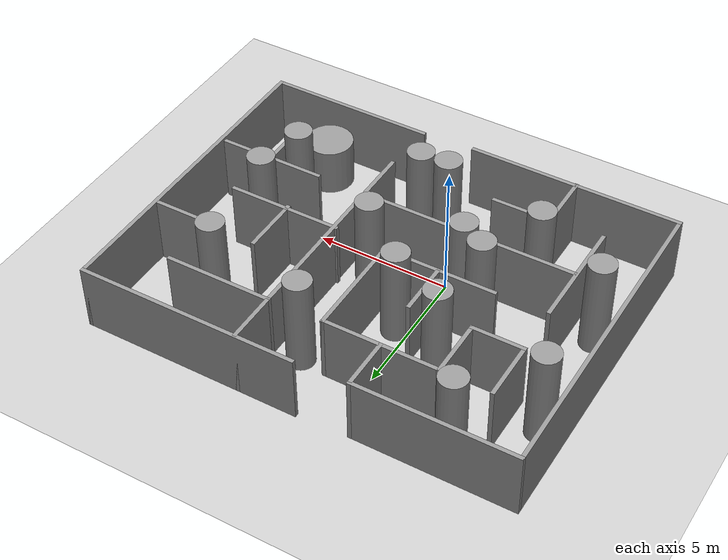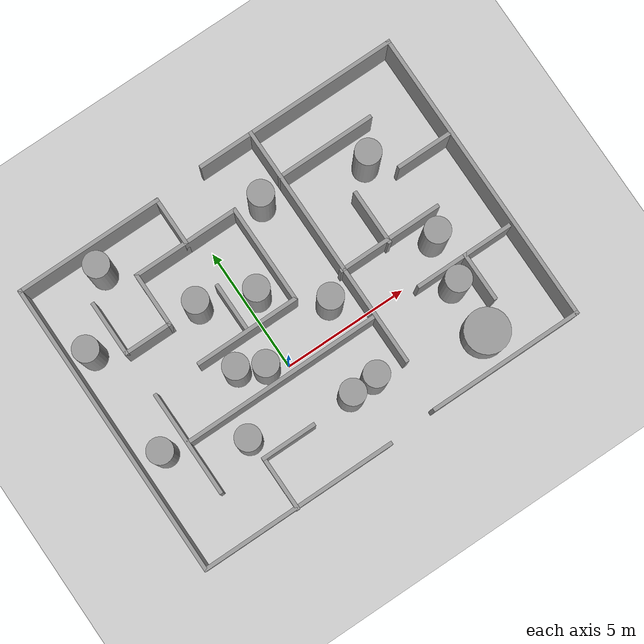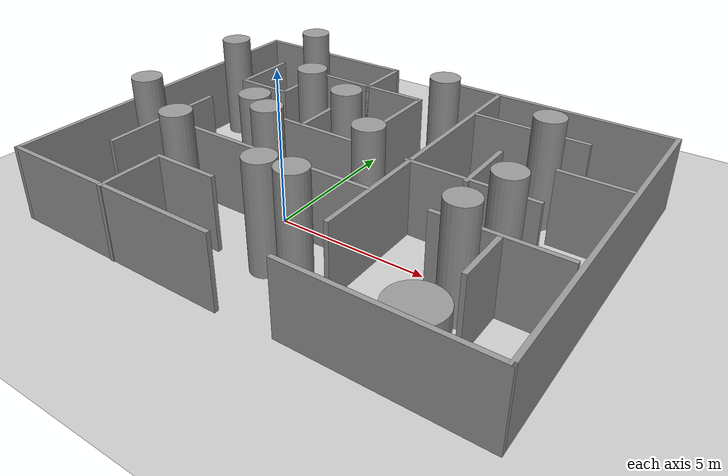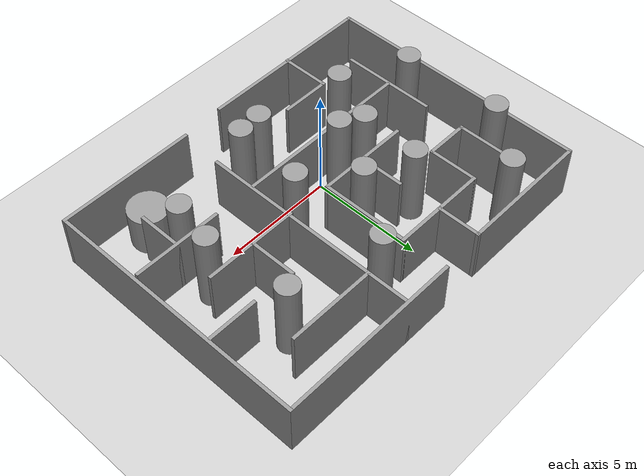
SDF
<sdf version="1.7">
 <world name="default">
  <model name="ground_plane">
   <static>1</static>
   <link name="link">
    <collision name="collision">
     <geometry><plane><normal>0 0 1</normal><size>100 100</size></plane></geometry>
     <surface>
      <contact><collide_bitmask>65535</collide_bitmask></contact>
      <friction><ode><mu>100</mu><mu2>50</mu2></ode></friction>
     </surface>
    </collision>
    <visual name="visual">
     <cast_shadows>0</cast_shadows>
     <geometry><plane><normal>0 0 1</normal><size>100 100</size></plane></geometry>
     <material>
      <script><uri>file://media/materials/scripts/gazebo.material</uri><name>Gazebo/Grey</name></script>
     </material>
    </visual>
   </link>
  </model>
  <light name="sun" type="directional">
   <pose>0 0 10 0 -0 0</pose>
   <diffuse>0.8 0.8 0.8 1</diffuse>
   <specular>0.2 0.2 0.2 1</specular>
   <attenuation>
    <range>1000</range>
    <constant>0.9</constant>
    <linear>0.01</linear>
    <quadratic>0.001</quadratic>
   </attenuation>
   <direction>-0.5 0.1 -0.9</direction>
   <spot><inner_angle>0</inner_angle><outer_angle>0</outer_angle><falloff>0</falloff></spot>
  </light>
  <gravity>0 0 -9.8</gravity>
  <magnetic_field>6e-06 2.3e-05 -4.2e-05</magnetic_field>
  <atmosphere type="adiabatic"/>
  <physics type="ode">
   <max_step_size>0.001</max_step_size>
   <real_time_factor>1</real_time_factor>
   <real_time_update_rate>1000</real_time_update_rate>
  </physics>
  <scene><ambient>0.4 0.4 0.4 1</ambient><background>0.7 0.7 0.7 1</background><shadows>1</shadows></scene>
  <spherical_coordinates>
   <surface_model>EARTH_WGS84</surface_model>
   <latitude_deg>0</latitude_deg>
   <longitude_deg>0</longitude_deg>
   <elevation>0</elevation>
   <heading_deg>0</heading_deg>
  </spherical_coordinates>
  <model name="maze2">
   <pose>1.45741 1.54703 0 0 -0 0</pose>
   <link name="Wall_100">
    <collision name="Wall_100_Collision">
     <geometry><box><size>4 0.15 2.5</size></box></geometry>
     <pose>0 0 1.25 0 -0 0</pose>
    </collision>
    <visual name="Wall_100_Visual">
     <pose>0 0 1.25 0 -0 0</pose>
     <geometry><box><size>4 0.15 2.5</size></box></geometry>
     <material>
      <script><uri>file://media/materials/scripts/gazebo.material</uri><name>Gazebo/Grey</name></script>
      <ambient>1 1 1 1</ambient>
     </material>
     <meta><layer>0</layer></meta>
    </visual>
    <pose>5.82452 -1.92681 0 0 -0 0</pose>
   </link>
   <link name="Wall_102">
    <collision name="Wall_102_Collision">
     <geometry><box><size>2 0.15 2.5</size></box></geometry>
     <pose>0 0 1.25 0 -0 0</pose>
    </collision>
    <visual name="Wall_102_Visual">
     <pose>0 0 1.25 0 -0 0</pose>
     <geometry><box><size>2 0.15 2.5</size></box></geometry>
     <material>
      <script><uri>file://media/materials/scripts/gazebo.material</uri><name>Gazebo/Grey</name></script>
      <ambient>1 1 1 1</ambient>
     </material>
     <meta><layer>0</layer></meta>
    </visual>
    <pose>5.87065 -2.85181 0 0 -0 -1.5708</pose>
   </link>
   <link name="Wall_64">
    <collision name="Wall_64_Collision">
     <geometry><box><size>2.25 0.15 2.5</size></box></geometry>
     <pose>0 0 1.25 0 -0 0</pose>
    </collision>
    <visual name="Wall_64_Visual">
     <pose>0 0 1.25 0 -0 0</pose>
     <geometry><box><size>2.25 0.15 2.5</size></box></geometry>
     <material>
      <script><uri>file://media/materials/scripts/gazebo.material</uri><name>Gazebo/Grey</name></script>
      <ambient>1 1 1 1</ambient>
     </material>
     <meta><layer>0</layer></meta>
    </visual>
    <pose>-6.07681 2.97681 0 0 -0 -1.5708</pose>
   </link>
   <link name="Wall_65">
    <collision name="Wall_65_Collision">
     <geometry><box><size>2 0.15 2.5</size></box></geometry>
     <pose>0 0 1.25 0 -0 0</pose>
    </collision>
    <visual name="Wall_65_Visual">
     <pose>0 0 1.25 0 -0 0</pose>
     <geometry><box><size>2 0.15 2.5</size></box></geometry>
     <material>
      <script><uri>file://media/materials/scripts/gazebo.material</uri><name>Gazebo/Grey</name></script>
      <ambient>1 1 1 1</ambient>
     </material>
     <meta><layer>0</layer></meta>
    </visual>
    <pose>-5.15181 1.92681 0 0 -0 0</pose>
   </link>
   <link name="Wall_66">
    <collision name="Wall_66_Collision">
     <geometry><box><size>2.25 0.15 2.5</size></box></geometry>
     <pose>0 0 1.25 0 -0 0</pose>
    </collision>
    <visual name="Wall_66_Visual">
     <pose>0 0 1.25 0 -0 0</pose>
     <geometry><box><size>2.25 0.15 2.5</size></box></geometry>
     <material>
      <script><uri>file://media/materials/scripts/gazebo.material</uri><name>Gazebo/Grey</name></script>
      <ambient>1 1 1 1</ambient>
     </material>
     <meta><layer>0</layer></meta>
    </visual>
    <pose>-4.22681 2.97681 0 0 -0 1.5708</pose>
   </link>
   <link name="Wall_67">
    <collision name="Wall_67_Collision">
     <geometry><box><size>2.25 0.15 2.5</size></box></geometry>
     <pose>0 0 1.25 0 -0 0</pose>
    </collision>
    <visual name="Wall_67_Visual">
     <pose>0 0 1.25 0 -0 0</pose>
     <geometry><box><size>2.25 0.15 2.5</size></box></geometry>
     <material>
      <script><uri>file://media/materials/scripts/gazebo.material</uri><name>Gazebo/Grey</name></script>
      <ambient>1 1 1 1</ambient>
     </material>
     <meta><layer>0</layer></meta>
    </visual>
    <pose>-3.17681 4.02681 0 0 -0 0</pose>
   </link>
   <link name="Wall_68">
    <collision name="Wall_68_Collision">
     <geometry><box><size>2 0.15 2.5</size></box></geometry>
     <pose>0 0 1.25 0 -0 0</pose>
    </collision>
    <visual name="Wall_68_Visual">
     <pose>0 0 1.25 0 -0 0</pose>
     <geometry><box><size>2 0.15 2.5</size></box></geometry>
     <material>
      <script><uri>file://media/materials/scripts/gazebo.material</uri><name>Gazebo/Grey</name></script>
      <ambient>1 1 1 1</ambient>
     </material>
     <meta><layer>0</layer></meta>
    </visual>
    <pose>-2.12681 4.95181 0 0 -0 1.5708</pose>
   </link>
   <link name="Wall_69">
    <collision name="Wall_69_Collision">
     <geometry><box><size>6 0.15 2.5</size></box></geometry>
     <pose>0 0 1.25 0 -0 0</pose>
    </collision>
    <visual name="Wall_69_Visual">
     <pose>0 0 1.25 0 -0 0</pose>
     <geometry><box><size>6 0.15 2.5</size></box></geometry>
     <material>
      <script><uri>file://media/materials/scripts/gazebo.material</uri><name>Gazebo/Grey</name></script>
      <ambient>1 1 1 1</ambient>
     </material>
     <meta><layer>0</layer></meta>
    </visual>
    <pose>-5.05181 5.87681 0 0 -0 3.14159</pose>
   </link>
   <link name="Wall_70">
    <collision name="Wall_70_Collision">
     <geometry><box><size>12 0.15 2.5</size></box></geometry>
     <pose>0 0 1.25 0 -0 0</pose>
    </collision>
    <visual name="Wall_70_Visual">
     <pose>0 0 1.25 0 -0 0</pose>
     <geometry><box><size>12 0.15 2.5</size></box></geometry>
     <material>
      <script><uri>file://media/materials/scripts/gazebo.material</uri><name>Gazebo/Grey</name></script>
      <ambient>1 1 1 1</ambient>
     </material>
     <meta><layer>0</layer></meta>
    </visual>
    <pose>-7.97681 -0.048192 0 0 -0 -1.5708</pose>
   </link>
   <link name="Wall_71">
    <collision name="Wall_71_Collision">
     <geometry><box><size>8 0.15 2.5</size></box></geometry>
     <pose>0 0 1.25 0 -0 0</pose>
    </collision>
    <visual name="Wall_71_Visual">
     <pose>0 0 1.25 0 -0 0</pose>
     <geometry><box><size>8 0.15 2.5</size></box></geometry>
     <material>
      <script><uri>file://media/materials/scripts/gazebo.material</uri><name>Gazebo/Grey</name></script>
      <ambient>1 1 1 1</ambient>
     </material>
     <meta><layer>0</layer></meta>
    </visual>
    <pose>-4.05181 -5.97319 0 0 -0 0</pose>
   </link>
   <link name="Wall_73">
    <collision name="Wall_73_Collision">
     <geometry><box><size>2.25 0.15 2.5</size></box></geometry>
     <pose>0 0 1.25 0 -0 0</pose>
    </collision>
    <visual name="Wall_73_Visual">
     <pose>0 0 1.25 0 -0 0</pose>
     <geometry><box><size>2.25 0.15 2.5</size></box></geometry>
     <material>
      <script><uri>file://media/materials/scripts/gazebo.material</uri><name>Gazebo/Grey</name></script>
      <ambient>1 1 1 1</ambient>
     </material>
     <meta><layer>0</layer></meta>
    </visual>
    <pose>-3.06387 -3.89794 0 0 -0 3.14159</pose>
   </link>
   <link name="Wall_74">
    <collision name="Wall_74_Collision">
     <geometry><box><size>2.25 0.15 2.5</size></box></geometry>
     <pose>0 0 1.25 0 -0 0</pose>
    </collision>
    <visual name="Wall_74_Visual">
     <pose>0 0 1.25 0 -0 0</pose>
     <geometry><box><size>2.25 0.15 2.5</size></box></geometry>
     <material>
      <script><uri>file://media/materials/scripts/gazebo.material</uri><name>Gazebo/Grey</name></script>
      <ambient>1 1 1 1</ambient>
     </material>
     <meta><layer>0</layer></meta>
    </visual>
    <pose>-4.11387 -4.94794 0 0 -0 -1.5708</pose>
   </link>
   <link name="Wall_76">
    <collision name="Wall_76_Collision">
     <geometry><box><size>2.25 0.15 2.5</size></box></geometry>
     <pose>0 0 1.25 0 -0 0</pose>
    </collision>
    <visual name="Wall_76_Visual">
     <pose>0 0 1.25 0 -0 0</pose>
     <geometry><box><size>2.25 0.15 2.5</size></box></geometry>
     <material>
      <script><uri>file://media/materials/scripts/gazebo.material</uri><name>Gazebo/Grey</name></script>
      <ambient>1 1 1 1</ambient>
     </material>
     <meta><layer>0</layer></meta>
    </visual>
    <pose>-1.07681 4.02681 0 0 -0 0</pose>
   </link>
   <link name="Wall_77">
    <collision name="Wall_77_Collision">
     <geometry><box><size>4 0.15 2.5</size></box></geometry>
     <pose>0 0 1.25 0 -0 0</pose>
    </collision>
    <visual name="Wall_77_Visual">
     <pose>0 0 1.25 0 -0 0</pose>
     <geometry><box><size>4 0.15 2.5</size></box></geometry>
     <material>
      <script><uri>file://media/materials/scripts/gazebo.material</uri><name>Gazebo/Grey</name></script>
      <ambient>1 1 1 1</ambient>
     </material>
     <meta><layer>0</layer></meta>
    </visual>
    <pose>-0.026809 2.10181 0 0 -0 -1.5708</pose>
   </link>
   <link name="Wall_78">
    <collision name="Wall_78_Collision">
     <geometry><box><size>4.25 0.15 2.5</size></box></geometry>
     <pose>0 0 1.25 0 -0 0</pose>
    </collision>
    <visual name="Wall_78_Visual">
     <pose>0 0 1.25 0 -0 0</pose>
     <geometry><box><size>4.25 0.15 2.5</size></box></geometry>
     <material>
      <script><uri>file://media/materials/scripts/gazebo.material</uri><name>Gazebo/Grey</name></script>
      <ambient>1 1 1 1</ambient>
     </material>
     <meta><layer>0</layer></meta>
    </visual>
    <pose>-2.07681 0.176808 0 0 -0 3.14159</pose>
   </link>
   <link name="Wall_80">
    <collision name="Wall_80_Collision">
     <geometry><box><size>2 0.15 2.5</size></box></geometry>
     <pose>0 0 1.25 0 -0 0</pose>
    </collision>
    <visual name="Wall_80_Visual">
     <pose>0 0 1.25 0 -0 0</pose>
     <geometry><box><size>2 0.15 2.5</size></box></geometry>
     <material>
      <script><uri>file://media/materials/scripts/gazebo.material</uri><name>Gazebo/Grey</name></script>
      <ambient>1 1 1 1</ambient>
     </material>
     <meta><layer>0</layer></meta>
    </visual>
    <pose>-2.05409 1.17091 0 0 -0 -1.5708</pose>
   </link>
   <link name="Wall_82">
    <collision name="Wall_82_Collision">
     <geometry><box><size>4.25 0.15 2.5</size></box></geometry>
     <pose>0 0 1.25 0 -0 0</pose>
    </collision>
    <visual name="Wall_82_Visual">
     <pose>0 0 1.25 0 -0 0</pose>
     <geometry><box><size>4.25 0.15 2.5</size></box></geometry>
     <material>
      <script><uri>file://media/materials/scripts/gazebo.material</uri><name>Gazebo/Grey</name></script>
      <ambient>1 1 1 1</ambient>
     </material>
     <meta><layer>0</layer></meta>
    </visual>
    <pose>-6.03658 -1.96545 0 0 -0 -1.5708</pose>
   </link>
   <link name="Wall_84">
    <collision name="Wall_84_Collision">
     <geometry><box><size>8 0.15 2.5</size></box></geometry>
     <pose>0 0 1.25 0 -0 0</pose>
    </collision>
    <visual name="Wall_84_Visual">
     <pose>0 0 1.25 0 -0 0</pose>
     <geometry><box><size>8 0.15 2.5</size></box></geometry>
     <material>
      <script><uri>file://media/materials/scripts/gazebo.material</uri><name>Gazebo/Grey</name></script>
      <ambient>1 1 1 1</ambient>
     </material>
     <meta><layer>0</layer></meta>
    </visual>
    <pose>-2.03113 -1.92681 0 0 -0 0</pose>
   </link>
   <link name="Wall_86">
    <collision name="Wall_86_Collision">
     <geometry><box><size>8.25 0.15 2.5</size></box></geometry>
     <pose>0 0 1.25 0 -0 0</pose>
    </collision>
    <visual name="Wall_86_Visual">
     <pose>0 0 1.25 0 -0 0</pose>
     <geometry><box><size>8.25 0.15 2.5</size></box></geometry>
     <material>
      <script><uri>file://media/materials/scripts/gazebo.material</uri><name>Gazebo/Grey</name></script>
      <ambient>1 1 1 1</ambient>
     </material>
     <meta><layer>0</layer></meta>
    </visual>
    <pose>3.92681 5.99794 0 0 -0 0</pose>
   </link>
   <link name="Wall_87">
    <collision name="Wall_87_Collision">
     <geometry><box><size>12 0.15 2.5</size></box></geometry>
     <pose>0 0 1.25 0 -0 0</pose>
    </collision>
    <visual name="Wall_87_Visual">
     <pose>0 0 1.25 0 -0 0</pose>
     <geometry><box><size>12 0.15 2.5</size></box></geometry>
     <material>
      <script><uri>file://media/materials/scripts/gazebo.material</uri><name>Gazebo/Grey</name></script>
      <ambient>1 1 1 1</ambient>
     </material>
     <meta><layer>0</layer></meta>
    </visual>
    <pose>7.97681 0.072938 0 0 -0 -1.5708</pose>
   </link>
   <link name="Wall_88">
    <collision name="Wall_88_Collision">
     <geometry><box><size>6.25 0.15 2.5</size></box></geometry>
     <pose>0 0 1.25 0 -0 0</pose>
    </collision>
    <visual name="Wall_88_Visual">
     <pose>0 0 1.25 0 -0 0</pose>
     <geometry><box><size>6.25 0.15 2.5</size></box></geometry>
     <material>
      <script><uri>file://media/materials/scripts/gazebo.material</uri><name>Gazebo/Grey</name></script>
      <ambient>1 1 1 1</ambient>
     </material>
     <meta><layer>0</layer></meta>
    </visual>
    <pose>4.92681 -5.85206 0 0 -0 3.14159</pose>
   </link>
   <link name="Wall_90">
    <collision name="Wall_90_Collision">
     <geometry><box><size>10 0.15 2.5</size></box></geometry>
     <pose>0 0 1.25 0 -0 0</pose>
    </collision>
    <visual name="Wall_90_Visual">
     <pose>0 0 1.25 0 -0 0</pose>
     <geometry><box><size>10 0.15 2.5</size></box></geometry>
     <material>
      <script><uri>file://media/materials/scripts/gazebo.material</uri><name>Gazebo/Grey</name></script>
      <ambient>1 1 1 1</ambient>
     </material>
     <meta><layer>0</layer></meta>
    </visual>
    <pose>2.00885 1.07294 0 0 -0 -1.5708</pose>
   </link>
   <link name="Wall_92">
    <collision name="Wall_92_Collision">
     <geometry><box><size>4 0.15 2.5</size></box></geometry>
     <pose>0 0 1.25 0 -0 0</pose>
    </collision>
    <visual name="Wall_92_Visual">
     <pose>0 0 1.25 0 -0 0</pose>
     <geometry><box><size>4 0.15 2.5</size></box></geometry>
     <material>
      <script><uri>file://media/materials/scripts/gazebo.material</uri><name>Gazebo/Grey</name></script>
      <ambient>1 1 1 1</ambient>
     </material>
     <meta><layer>0</layer></meta>
    </visual>
    <pose>3.93385 4.10726 0 0 -0 0</pose>
   </link>
   <link name="Wall_94">
    <collision name="Wall_94_Collision">
     <geometry><box><size>4.25 0.15 2.5</size></box></geometry>
     <pose>0 0 1.25 0 -0 0</pose>
    </collision>
    <visual name="Wall_94_Visual">
     <pose>0 0 1.25 0 -0 0</pose>
     <geometry><box><size>4.25 0.15 2.5</size></box></geometry>
     <material>
      <script><uri>file://media/materials/scripts/gazebo.material</uri><name>Gazebo/Grey</name></script>
      <ambient>1 1 1 1</ambient>
     </material>
     <meta><layer>0</layer></meta>
    </visual>
    <pose>3.97839 0.084548 0 0 -0 0</pose>
   </link>
   <link name="Wall_96">
    <collision name="Wall_96_Collision">
     <geometry><box><size>2.25 0.15 2.5</size></box></geometry>
     <pose>0 0 1.25 0 -0 0</pose>
    </collision>
    <visual name="Wall_96_Visual">
     <pose>0 0 1.25 0 -0 0</pose>
     <geometry><box><size>2.25 0.15 2.5</size></box></geometry>
     <material>
      <script><uri>file://media/materials/scripts/gazebo.material</uri><name>Gazebo/Grey</name></script>
      <ambient>1 1 1 1</ambient>
     </material>
     <meta><layer>0</layer></meta>
    </visual>
    <pose>3.89952 1.04591 0 0 -0 -1.5708</pose>
   </link>
   <link name="Wall_98">
    <collision name="Wall_98_Collision">
     <geometry><box><size>2.25 0.15 2.5</size></box></geometry>
     <pose>0 0 1.25 0 -0 0</pose>
    </collision>
    <visual name="Wall_98_Visual">
     <pose>0 0 1.25 0 -0 0</pose>
     <geometry><box><size>2.25 0.15 2.5</size></box></geometry>
     <material>
      <script><uri>file://media/materials/scripts/gazebo.material</uri><name>Gazebo/Grey</name></script>
      <ambient>1 1 1 1</ambient>
     </material>
     <meta><layer>0</layer></meta>
    </visual>
    <pose>6.79997 2.01545 0 0 -0 0</pose>
   </link>
   <static>1</static>
  </model>
  <model name="long_cylinder">
   <link name="link_5">
    <inertial>
     <mass>3.60259</mass>
     <inertia><ixx>4.12154</ixx><ixy>0</ixy><ixz>0</ixz><iyy>4.12154</iyy><iyz>0</iyz><izz>0.450323</izz></inertia>
    </inertial>
    <pose>0 -2e-06 0 0 -0 0</pose>
    <visual name="visual">
     <geometry><cylinder><radius>0.5</radius><length>3.60259</length></cylinder></geometry>
     <material>
      <lighting>1</lighting>
      <script><uri>file://media/materials/scripts/gazebo.material</uri><name>Gazebo/Grey</name></script>
      <shader type="pixel"/>
      <emissive>0 0 0 1</emissive>
     </material>
    </visual>
    <collision name="collision">
     <geometry><cylinder><radius>0.5</radius><length>3.60258</length></cylinder></geometry>
     <surface>
      <friction>
       <ode><mu>1</mu><mu2>1</mu2><fdir1>0 0 0</fdir1><slip1>0</slip1><slip2>0</slip2></ode>
       <torsional>
        <coefficient>1</coefficient>
        <patch_radius>0</patch_radius>
        <surface_radius>0</surface_radius>
        <use_patch_radius>1</use_patch_radius>
        <ode><slip>0</slip></ode>
       </torsional>
      </friction>
      <bounce><restitution_coefficient>0</restitution_coefficient><threshold>1e+06</threshold></bounce>
      <contact>
       <collide_without_contact>0</collide_without_contact>
       <collide_without_contact_bitmask>1</collide_without_contact_bitmask>
       <collide_bitmask>1</collide_bitmask>
       <ode>
        <soft_cfm>0</soft_cfm>
        <soft_erp>0.2</soft_erp>
        <kp>1e+13</kp>
        <kd>1</kd>
        <max_vel>0.01</max_vel>
        <min_depth>0</min_depth>
       </ode>
       <bullet>
        <split_impulse>1</split_impulse>
        <split_impulse_penetration_threshold>-0.01</split_impulse_penetration_threshold>
        <soft_cfm>0</soft_cfm>
        <soft_erp>0.2</soft_erp>
        <kp>1e+13</kp>
        <kd>1</kd>
       </bullet>
      </contact>
     </surface>
    </collision>
   </link>
   <static>0</static>
   <pose>2.24332 -2.16254 1.80128 0 -0 0</pose>
  </model>
  <model name="long_cylinder_0">
   <link name="link_5">
    <inertial>
     <mass>3.60259</mass>
     <inertia><ixx>4.12154</ixx><ixy>0</ixy><ixz>0</ixz><iyy>4.12154</iyy><iyz>0</iyz><izz>0.450323</izz></inertia>
    </inertial>
    <pose>0 -2e-06 0 0 -0 0</pose>
    <visual name="visual">
     <geometry><cylinder><radius>0.5</radius><length>3.60259</length></cylinder></geometry>
     <material>
      <lighting>1</lighting>
      <script><uri>file://media/materials/scripts/gazebo.material</uri><name>Gazebo/Grey</name></script>
      <shader type="pixel"/>
      <emissive>0 0 0 1</emissive>
     </material>
    </visual>
    <collision name="collision">
     <geometry><cylinder><radius>0.5</radius><length>3.60258</length></cylinder></geometry>
     <surface>
      <friction>
       <ode><mu>1</mu><mu2>1</mu2><fdir1>0 0 0</fdir1><slip1>0</slip1><slip2>0</slip2></ode>
       <torsional>
        <coefficient>1</coefficient>
        <patch_radius>0</patch_radius>
        <surface_radius>0</surface_radius>
        <use_patch_radius>1</use_patch_radius>
        <ode><slip>0</slip></ode>
       </torsional>
      </friction>
      <bounce><restitution_coefficient>0</restitution_coefficient><threshold>1e+06</threshold></bounce>
      <contact>
       <collide_without_contact>0</collide_without_contact>
       <collide_without_contact_bitmask>1</collide_without_contact_bitmask>
       <collide_bitmask>1</collide_bitmask>
       <ode>
        <soft_cfm>0</soft_cfm>
        <soft_erp>0.2</soft_erp>
        <kp>1e+13</kp>
        <kd>1</kd>
        <max_vel>0.01</max_vel>
        <min_depth>0</min_depth>
       </ode>
       <bullet>
        <split_impulse>1</split_impulse>
        <split_impulse_penetration_threshold>-0.01</split_impulse_penetration_threshold>
        <soft_cfm>0</soft_cfm>
        <soft_erp>0.2</soft_erp>
        <kp>1e+13</kp>
        <kd>1</kd>
       </bullet>
      </contact>
     </surface>
    </collision>
   </link>
   <static>0</static>
   <pose>-2.72015 -1.48776 1.80128 0 -0 0</pose>
  </model>
  <model name="long_cylinder_1">
   <link name="link_5">
    <inertial>
     <mass>3.60259</mass>
     <inertia><ixx>4.12154</ixx><ixy>0</ixy><ixz>0</ixz><iyy>4.12154</iyy><iyz>0</iyz><izz>0.450323</izz></inertia>
    </inertial>
    <pose>0 -2e-06 0 0 -0 0</pose>
    <visual name="visual">
     <geometry><cylinder><radius>0.5</radius><length>3.60259</length></cylinder></geometry>
     <material>
      <lighting>1</lighting>
      <script><uri>file://media/materials/scripts/gazebo.material</uri><name>Gazebo/Grey</name></script>
      <shader type="pixel"/>
      <emissive>0 0 0 1</emissive>
     </material>
    </visual>
    <collision name="collision">
     <geometry><cylinder><radius>0.5</radius><length>3.60258</length></cylinder></geometry>
     <surface>
      <friction>
       <ode><mu>1</mu><mu2>1</mu2><fdir1>0 0 0</fdir1><slip1>0</slip1><slip2>0</slip2></ode>
       <torsional>
        <coefficient>1</coefficient>
        <patch_radius>0</patch_radius>
        <surface_radius>0</surface_radius>
        <use_patch_radius>1</use_patch_radius>
        <ode><slip>0</slip></ode>
       </torsional>
      </friction>
      <bounce><restitution_coefficient>0</restitution_coefficient><threshold>1e+06</threshold></bounce>
      <contact>
       <collide_without_contact>0</collide_without_contact>
       <collide_without_contact_bitmask>1</collide_without_contact_bitmask>
       <collide_bitmask>1</collide_bitmask>
       <ode>
        <soft_cfm>0</soft_cfm>
        <soft_erp>0.2</soft_erp>
        <kp>1e+13</kp>
        <kd>1</kd>
        <max_vel>0.01</max_vel>
        <min_depth>0</min_depth>
       </ode>
       <bullet>
        <split_impulse>1</split_impulse>
        <split_impulse_penetration_threshold>-0.01</split_impulse_penetration_threshold>
        <soft_cfm>0</soft_cfm>
        <soft_erp>0.2</soft_erp>
        <kp>1e+13</kp>
        <kd>1</kd>
       </bullet>
      </contact>
     </surface>
    </collision>
   </link>
   <static>0</static>
   <pose>6.51635 -1.00621 1.80128 0 -0 0</pose>
  </model>
  <model name="long_cylinder_2">
   <link name="link_5">
    <inertial>
     <mass>3.60259</mass>
     <inertia><ixx>4.12154</ixx><ixy>0</ixy><ixz>0</ixz><iyy>4.12154</iyy><iyz>0</iyz><izz>0.450323</izz></inertia>
    </inertial>
    <pose>0 -2e-06 0 0 -0 0</pose>
    <visual name="visual">
     <geometry><cylinder><radius>0.5</radius><length>3.60259</length></cylinder></geometry>
     <material>
      <lighting>1</lighting>
      <script><uri>file://media/materials/scripts/gazebo.material</uri><name>Gazebo/Grey</name></script>
      <shader type="pixel"/>
      <emissive>0 0 0 1</emissive>
     </material>
    </visual>
    <collision name="collision">
     <geometry><cylinder><radius>0.5</radius><length>3.60258</length></cylinder></geometry>
     <surface>
      <friction>
       <ode><mu>1</mu><mu2>1</mu2><fdir1>0 0 0</fdir1><slip1>0</slip1><slip2>0</slip2></ode>
       <torsional>
        <coefficient>1</coefficient>
        <patch_radius>0</patch_radius>
        <surface_radius>0</surface_radius>
        <use_patch_radius>1</use_patch_radius>
        <ode><slip>0</slip></ode>
       </torsional>
      </friction>
      <bounce><restitution_coefficient>0</restitution_coefficient><threshold>1e+06</threshold></bounce>
      <contact>
       <collide_without_contact>0</collide_without_contact>
       <collide_without_contact_bitmask>1</collide_without_contact_bitmask>
       <collide_bitmask>1</collide_bitmask>
       <ode>
        <soft_cfm>0</soft_cfm>
        <soft_erp>0.2</soft_erp>
        <kp>1e+13</kp>
        <kd>1</kd>
        <max_vel>0.01</max_vel>
        <min_depth>0</min_depth>
       </ode>
       <bullet>
        <split_impulse>1</split_impulse>
        <split_impulse_penetration_threshold>-0.01</split_impulse_penetration_threshold>
        <soft_cfm>0</soft_cfm>
        <soft_erp>0.2</soft_erp>
        <kp>1e+13</kp>
        <kd>1</kd>
       </bullet>
      </contact>
     </surface>
    </collision>
   </link>
   <static>0</static>
   <pose>-5.50801 -0.148989 1.80128 0 -0 0</pose>
  </model>
  <model name="long_cylinder_3">
   <link name="link_5">
    <inertial>
     <mass>3.60259</mass>
     <inertia><ixx>4.12154</ixx><ixy>0</ixy><ixz>0</ixz><iyy>4.12154</iyy><iyz>0</iyz><izz>0.450323</izz></inertia>
    </inertial>
    <pose>0 -2e-06 0 0 -0 0</pose>
    <visual name="visual">
     <geometry><cylinder><radius>0.5</radius><length>3.60259</length></cylinder></geometry>
     <material>
      <lighting>1</lighting>
      <script><uri>file://media/materials/scripts/gazebo.material</uri><name>Gazebo/Grey</name></script>
      <shader type="pixel"/>
      <emissive>0 0 0 1</emissive>
     </material>
    </visual>
    <collision name="collision">
     <geometry><cylinder><radius>0.5</radius><length>3.60258</length></cylinder></geometry>
     <surface>
      <friction>
       <ode><mu>1</mu><mu2>1</mu2><fdir1>0 0 0</fdir1><slip1>0</slip1><slip2>0</slip2></ode>
       <torsional>
        <coefficient>1</coefficient>
        <patch_radius>0</patch_radius>
        <surface_radius>0</surface_radius>
        <use_patch_radius>1</use_patch_radius>
        <ode><slip>0</slip></ode>
       </torsional>
      </friction>
      <bounce><restitution_coefficient>0</restitution_coefficient><threshold>1e+06</threshold></bounce>
      <contact>
       <collide_without_contact>0</collide_without_contact>
       <collide_without_contact_bitmask>1</collide_without_contact_bitmask>
       <collide_bitmask>1</collide_bitmask>
       <ode>
        <soft_cfm>0</soft_cfm>
        <soft_erp>0.2</soft_erp>
        <kp>1e+13</kp>
        <kd>1</kd>
        <max_vel>0.01</max_vel>
        <min_depth>0</min_depth>
       </ode>
       <bullet>
        <split_impulse>1</split_impulse>
        <split_impulse_penetration_threshold>-0.01</split_impulse_penetration_threshold>
        <soft_cfm>0</soft_cfm>
        <soft_erp>0.2</soft_erp>
        <kp>1e+13</kp>
        <kd>1</kd>
       </bullet>
      </contact>
     </surface>
    </collision>
   </link>
   <static>0</static>
   <pose>-1.55851 3.53762 1.80128 0 -0 0</pose>
  </model>
  <model name="long_cylinder_4">
   <link name="link_5">
    <inertial>
     <mass>3.60259</mass>
     <inertia><ixx>4.12154</ixx><ixy>0</ixy><ixz>0</ixz><iyy>4.12154</iyy><iyz>0</iyz><izz>0.450323</izz></inertia>
    </inertial>
    <pose>0 -2e-06 0 0 -0 0</pose>
    <visual name="visual">
     <geometry><cylinder><radius>0.5</radius><length>3.60259</length></cylinder></geometry>
     <material>
      <lighting>1</lighting>
      <script><uri>file://media/materials/scripts/gazebo.material</uri><name>Gazebo/Grey</name></script>
      <shader type="pixel"/>
      <emissive>0 0 0 1</emissive>
     </material>
    </visual>
    <collision name="collision">
     <geometry><cylinder><radius>0.5</radius><length>3.60258</length></cylinder></geometry>
     <surface>
      <friction>
       <ode><mu>1</mu><mu2>1</mu2><fdir1>0 0 0</fdir1><slip1>0</slip1><slip2>0</slip2></ode>
       <torsional>
        <coefficient>1</coefficient>
        <patch_radius>0</patch_radius>
        <surface_radius>0</surface_radius>
        <use_patch_radius>1</use_patch_radius>
        <ode><slip>0</slip></ode>
       </torsional>
      </friction>
      <bounce><restitution_coefficient>0</restitution_coefficient><threshold>1e+06</threshold></bounce>
      <contact>
       <collide_without_contact>0</collide_without_contact>
       <collide_without_contact_bitmask>1</collide_without_contact_bitmask>
       <collide_bitmask>1</collide_bitmask>
       <ode>
        <soft_cfm>0</soft_cfm>
        <soft_erp>0.2</soft_erp>
        <kp>1e+13</kp>
        <kd>1</kd>
        <max_vel>0.01</max_vel>
        <min_depth>0</min_depth>
       </ode>
       <bullet>
        <split_impulse>1</split_impulse>
        <split_impulse_penetration_threshold>-0.01</split_impulse_penetration_threshold>
        <soft_cfm>0</soft_cfm>
        <soft_erp>0.2</soft_erp>
        <kp>1e+13</kp>
        <kd>1</kd>
       </bullet>
      </contact>
     </surface>
    </collision>
   </link>
   <static>0</static>
   <pose>2.45834 5.39885 1.80128 0 -0 0</pose>
  </model>
  <model name="long_cylinder_5">
   <link name="link_5">
    <inertial>
     <mass>3.60259</mass>
     <inertia><ixx>4.12154</ixx><ixy>0</ixy><ixz>0</ixz><iyy>4.12154</iyy><iyz>0</iyz><izz>0.450323</izz></inertia>
    </inertial>
    <pose>0 -2e-06 0 0 -0 0</pose>
    <visual name="visual">
     <geometry><cylinder><radius>0.5</radius><length>3.60259</length></cylinder></geometry>
     <material>
      <lighting>1</lighting>
      <script><uri>file://media/materials/scripts/gazebo.material</uri><name>Gazebo/Grey</name></script>
      <shader type="pixel"/>
      <emissive>0 0 0 1</emissive>
     </material>
    </visual>
    <collision name="collision">
     <geometry><cylinder><radius>0.5</radius><length>3.60258</length></cylinder></geometry>
     <surface>
      <friction>
       <ode><mu>1</mu><mu2>1</mu2><fdir1>0 0 0</fdir1><slip1>0</slip1><slip2>0</slip2></ode>
       <torsional>
        <coefficient>1</coefficient>
        <patch_radius>0</patch_radius>
        <surface_radius>0</surface_radius>
        <use_patch_radius>1</use_patch_radius>
        <ode><slip>0</slip></ode>
       </torsional>
      </friction>
      <bounce><restitution_coefficient>0</restitution_coefficient><threshold>1e+06</threshold></bounce>
      <contact>
       <collide_without_contact>0</collide_without_contact>
       <collide_without_contact_bitmask>1</collide_without_contact_bitmask>
       <collide_bitmask>1</collide_bitmask>
       <ode>
        <soft_cfm>0</soft_cfm>
        <soft_erp>0.2</soft_erp>
        <kp>1e+13</kp>
        <kd>1</kd>
        <max_vel>0.01</max_vel>
        <min_depth>0</min_depth>
       </ode>
       <bullet>
        <split_impulse>1</split_impulse>
        <split_impulse_penetration_threshold>-0.01</split_impulse_penetration_threshold>
        <soft_cfm>0</soft_cfm>
        <soft_erp>0.2</soft_erp>
        <kp>1e+13</kp>
        <kd>1</kd>
       </bullet>
      </contact>
     </surface>
    </collision>
   </link>
   <static>0</static>
   <pose>1.20161 -2.21974 1.80128 0 -0 0</pose>
  </model>
  <model name="big_cylinder">
   <link name="link_6">
    <inertial>
     <mass>5.40188</mass>
     <inertia><ixx>2.45932</ixx><ixy>0</ixy><ixz>0</ixz><iyy>2.45932</iyy><iyz>0</iyz><izz>2.03968</izz></inertia>
    </inertial>
    <pose>3e-06 3e-06 0 0 -0 0</pose>
    <visual name="visual">
     <geometry><cylinder><radius>0.869008</radius><length>1.78822</length></cylinder></geometry>
     <material>
      <lighting>1</lighting>
      <script><uri>file://media/materials/scripts/gazebo.material</uri><name>Gazebo/Grey</name></script>
      <shader type="pixel"/>
     </material>
    </visual>
    <collision name="collision">
     <geometry><cylinder><radius>0.869008</radius><length>1.78822</length></cylinder></geometry>
     <surface>
      <friction>
       <ode><mu>1</mu><mu2>1</mu2><fdir1>0 0 0</fdir1><slip1>0</slip1><slip2>0</slip2></ode>
       <torsional>
        <coefficient>1</coefficient>
        <patch_radius>0</patch_radius>
        <surface_radius>0</surface_radius>
        <use_patch_radius>1</use_patch_radius>
        <ode><slip>0</slip></ode>
       </torsional>
      </friction>
      <bounce><restitution_coefficient>0</restitution_coefficient><threshold>1e+06</threshold></bounce>
      <contact>
       <collide_without_contact>0</collide_without_contact>
       <collide_without_contact_bitmask>1</collide_without_contact_bitmask>
       <collide_bitmask>1</collide_bitmask>
       <ode>
        <soft_cfm>0</soft_cfm>
        <soft_erp>0.2</soft_erp>
        <kp>1e+13</kp>
        <kd>1</kd>
        <max_vel>0.01</max_vel>
        <min_depth>0</min_depth>
       </ode>
       <bullet>
        <split_impulse>1</split_impulse>
        <split_impulse_penetration_threshold>-0.01</split_impulse_penetration_threshold>
        <soft_cfm>0</soft_cfm>
        <soft_erp>0.2</soft_erp>
        <kp>1e+13</kp>
        <kd>1</kd>
       </bullet>
      </contact>
     </surface>
    </collision>
   </link>
   <static>0</static>
   <pose>6.5338 -3.0345 0.89411 0 -0 0</pose>
  </model>
  <model name="long_cylinder_6">
   <link name="link_5">
    <inertial>
     <mass>3.60259</mass>
     <inertia><ixx>4.12154</ixx><ixy>0</ixy><ixz>0</ixz><iyy>4.12154</iyy><iyz>0</iyz><izz>0.450323</izz></inertia>
    </inertial>
    <pose>0 -2e-06 0 0 -0 0</pose>
    <visual name="visual">
     <geometry><cylinder><radius>0.5</radius><length>3.60259</length></cylinder></geometry>
     <material>
      <lighting>1</lighting>
      <script><uri>file://media/materials/scripts/gazebo.material</uri><name>Gazebo/Grey</name></script>
      <shader type="pixel"/>
      <emissive>0 0 0 1</emissive>
     </material>
    </visual>
    <collision name="collision">
     <geometry><cylinder><radius>0.5</radius><length>3.60258</length></cylinder></geometry>
     <surface>
      <friction>
       <ode><mu>1</mu><mu2>1</mu2><fdir1>0 0 0</fdir1><slip1>0</slip1><slip2>0</slip2></ode>
       <torsional>
        <coefficient>1</coefficient>
        <patch_radius>0</patch_radius>
        <surface_radius>0</surface_radius>
        <use_patch_radius>1</use_patch_radius>
        <ode><slip>0</slip></ode>
       </torsional>
      </friction>
      <bounce><restitution_coefficient>0</restitution_coefficient><threshold>1e+06</threshold></bounce>
      <contact>
       <collide_without_contact>0</collide_without_contact>
       <collide_without_contact_bitmask>1</collide_without_contact_bitmask>
       <collide_bitmask>1</collide_bitmask>
       <ode>
        <soft_cfm>0</soft_cfm>
        <soft_erp>0.2</soft_erp>
        <kp>1e+13</kp>
        <kd>1</kd>
        <max_vel>0.01</max_vel>
        <min_depth>0</min_depth>
       </ode>
       <bullet>
        <split_impulse>1</split_impulse>
        <split_impulse_penetration_threshold>-0.01</split_impulse_penetration_threshold>
        <soft_cfm>0</soft_cfm>
        <soft_erp>0.2</soft_erp>
        <kp>1e+13</kp>
        <kd>1</kd>
       </bullet>
      </contact>
     </surface>
    </collision>
   </link>
   <static>0</static>
   <pose>6.87719 0.821267 1.80128 0 -0 0</pose>
  </model>
  <model name="long_cylinder_7">
   <link name="link_5">
    <inertial>
     <mass>3.60259</mass>
     <inertia><ixx>4.12154</ixx><ixy>0</ixy><ixz>0</ixz><iyy>4.12154</iyy><iyz>0</iyz><izz>0.450323</izz></inertia>
    </inertial>
    <pose>0 -2e-06 0 0 -0 0</pose>
    <visual name="visual">
     <geometry><cylinder><radius>0.5</radius><length>3.60259</length></cylinder></geometry>
     <material>
      <lighting>1</lighting>
      <script><uri>file://media/materials/scripts/gazebo.material</uri><name>Gazebo/Grey</name></script>
      <shader type="pixel"/>
      <emissive>0 0 0 1</emissive>
     </material>
    </visual>
    <collision name="collision">
     <geometry><cylinder><radius>0.5</radius><length>3.60258</length></cylinder></geometry>
     <surface>
      <friction>
       <ode><mu>1</mu><mu2>1</mu2><fdir1>0 0 0</fdir1><slip1>0</slip1><slip2>0</slip2></ode>
       <torsional>
        <coefficient>1</coefficient>
        <patch_radius>0</patch_radius>
        <surface_radius>0</surface_radius>
        <use_patch_radius>1</use_patch_radius>
        <ode><slip>0</slip></ode>
       </torsional>
      </friction>
      <bounce><restitution_coefficient>0</restitution_coefficient><threshold>1e+06</threshold></bounce>
      <contact>
       <collide_without_contact>0</collide_without_contact>
       <collide_without_contact_bitmask>1</collide_without_contact_bitmask>
       <collide_bitmask>1</collide_bitmask>
       <ode>
        <soft_cfm>0</soft_cfm>
        <soft_erp>0.2</soft_erp>
        <kp>1e+13</kp>
        <kd>1</kd>
        <max_vel>0.01</max_vel>
        <min_depth>0</min_depth>
       </ode>
       <bullet>
        <split_impulse>1</split_impulse>
        <split_impulse_penetration_threshold>-0.01</split_impulse_penetration_threshold>
        <soft_cfm>0</soft_cfm>
        <soft_erp>0.2</soft_erp>
        <kp>1e+13</kp>
        <kd>1</kd>
       </bullet>
      </contact>
     </surface>
    </collision>
   </link>
   <static>0</static>
   <pose>6.42515 4.49448 1.80129 0 -0 0</pose>
  </model>
  <model name="long_cylinder_8">
   <link name="link_5">
    <inertial>
     <mass>3.60259</mass>
     <inertia><ixx>4.12154</ixx><ixy>0</ixy><ixz>0</ixz><iyy>4.12154</iyy><iyz>0</iyz><izz>0.450323</izz></inertia>
    </inertial>
    <pose>0 -2e-06 0 0 -0 0</pose>
    <visual name="visual">
     <geometry><cylinder><radius>0.5</radius><length>3.60259</length></cylinder></geometry>
     <material>
      <lighting>1</lighting>
      <script><uri>file://media/materials/scripts/gazebo.material</uri><name>Gazebo/Grey</name></script>
      <shader type="pixel"/>
      <emissive>0 0 0 1</emissive>
     </material>
    </visual>
    <collision name="collision">
     <geometry><cylinder><radius>0.5</radius><length>3.60258</length></cylinder></geometry>
     <surface>
      <friction>
       <ode><mu>1</mu><mu2>1</mu2><fdir1>0 0 0</fdir1><slip1>0</slip1><slip2>0</slip2></ode>
       <torsional>
        <coefficient>1</coefficient>
        <patch_radius>0</patch_radius>
        <surface_radius>0</surface_radius>
        <use_patch_radius>1</use_patch_radius>
        <ode><slip>0</slip></ode>
       </torsional>
      </friction>
      <bounce><restitution_coefficient>0</restitution_coefficient><threshold>1e+06</threshold></bounce>
      <contact>
       <collide_without_contact>0</collide_without_contact>
       <collide_without_contact_bitmask>1</collide_without_contact_bitmask>
       <collide_bitmask>1</collide_bitmask>
       <ode>
        <soft_cfm>0</soft_cfm>
        <soft_erp>0.2</soft_erp>
        <kp>1e+13</kp>
        <kd>1</kd>
        <max_vel>0.01</max_vel>
        <min_depth>0</min_depth>
       </ode>
       <bullet>
        <split_impulse>1</split_impulse>
        <split_impulse_penetration_threshold>-0.01</split_impulse_penetration_threshold>
        <soft_cfm>0</soft_cfm>
        <soft_erp>0.2</soft_erp>
        <kp>1e+13</kp>
        <kd>1</kd>
       </bullet>
      </contact>
     </surface>
    </collision>
   </link>
   <static>0</static>
   <pose>-1.68901 0.828434 1.80128 0 -0 0</pose>
  </model>
  <model name="long_cylinder_9">
   <link name="link_5">
    <inertial>
     <mass>3.60259</mass>
     <inertia><ixx>4.12154</ixx><ixy>0</ixy><ixz>0</ixz><iyy>4.12154</iyy><iyz>0</iyz><izz>0.450323</izz></inertia>
    </inertial>
    <pose>0 -2e-06 0 0 -0 0</pose>
    <visual name="visual">
     <geometry><cylinder><radius>0.5</radius><length>3.60259</length></cylinder></geometry>
     <material>
      <lighting>1</lighting>
      <script><uri>file://media/materials/scripts/gazebo.material</uri><name>Gazebo/Grey</name></script>
      <shader type="pixel"/>
      <emissive>0 0 0 1</emissive>
     </material>
    </visual>
    <collision name="collision">
     <geometry><cylinder><radius>0.5</radius><length>3.60258</length></cylinder></geometry>
     <surface>
      <friction>
       <ode><mu>1</mu><mu2>1</mu2><fdir1>0 0 0</fdir1><slip1>0</slip1><slip2>0</slip2></ode>
       <torsional>
        <coefficient>1</coefficient>
        <patch_radius>0</patch_radius>
        <surface_radius>0</surface_radius>
        <use_patch_radius>1</use_patch_radius>
        <ode><slip>0</slip></ode>
       </torsional>
      </friction>
      <bounce><restitution_coefficient>0</restitution_coefficient><threshold>1e+06</threshold></bounce>
      <contact>
       <collide_without_contact>0</collide_without_contact>
       <collide_without_contact_bitmask>1</collide_without_contact_bitmask>
       <collide_bitmask>1</collide_bitmask>
       <ode>
        <soft_cfm>0</soft_cfm>
        <soft_erp>0.2</soft_erp>
        <kp>1e+13</kp>
        <kd>1</kd>
        <max_vel>0.01</max_vel>
        <min_depth>0</min_depth>
       </ode>
       <bullet>
        <split_impulse>1</split_impulse>
        <split_impulse_penetration_threshold>-0.01</split_impulse_penetration_threshold>
        <soft_cfm>0</soft_cfm>
        <soft_erp>0.2</soft_erp>
        <kp>1e+13</kp>
        <kd>1</kd>
       </bullet>
      </contact>
     </surface>
    </collision>
   </link>
   <static>0</static>
   <pose>2.4487 1.0008 1.80129 0 -0 0</pose>
  </model>
  <model name="long_cylinder_10">
   <link name="link_5">
    <inertial>
     <mass>3.60259</mass>
     <inertia><ixx>4.12154</ixx><ixy>0</ixy><ixz>0</ixz><iyy>4.12154</iyy><iyz>0</iyz><izz>0.450323</izz></inertia>
    </inertial>
    <pose>0 -2e-06 0 0 -0 0</pose>
    <visual name="visual">
     <geometry><cylinder><radius>0.5</radius><length>3.60259</length></cylinder></geometry>
     <material>
      <lighting>1</lighting>
      <script><uri>file://media/materials/scripts/gazebo.material</uri><name>Gazebo/Grey</name></script>
      <shader type="pixel"/>
      <emissive>0 0 0 1</emissive>
     </material>
    </visual>
    <collision name="collision">
     <geometry><cylinder><radius>0.5</radius><length>3.60258</length></cylinder></geometry>
     <surface>
      <friction>
       <ode><mu>1</mu><mu2>1</mu2><fdir1>0 0 0</fdir1><slip1>0</slip1><slip2>0</slip2></ode>
       <torsional>
        <coefficient>1</coefficient>
        <patch_radius>0</patch_radius>
        <surface_radius>0</surface_radius>
        <use_patch_radius>1</use_patch_radius>
        <ode><slip>0</slip></ode>
       </torsional>
      </friction>
      <bounce><restitution_coefficient>0</restitution_coefficient><threshold>1e+06</threshold></bounce>
      <contact>
       <collide_without_contact>0</collide_without_contact>
       <collide_without_contact_bitmask>1</collide_without_contact_bitmask>
       <collide_bitmask>1</collide_bitmask>
       <ode>
        <soft_cfm>0</soft_cfm>
        <soft_erp>0.2</soft_erp>
        <kp>1e+13</kp>
        <kd>1</kd>
        <max_vel>0.01</max_vel>
        <min_depth>0</min_depth>
       </ode>
       <bullet>
        <split_impulse>1</split_impulse>
        <split_impulse_penetration_threshold>-0.01</split_impulse_penetration_threshold>
        <soft_cfm>0</soft_cfm>
        <soft_erp>0.2</soft_erp>
        <kp>1e+13</kp>
        <kd>1</kd>
       </bullet>
      </contact>
     </surface>
    </collision>
   </link>
   <static>0</static>
   <pose>-5.68736 4.26877 1.80128 0 -0 0</pose>
  </model>
  <model name="long_cylinder_11">
   <link name="link_5">
    <inertial>
     <mass>3.60259</mass>
     <inertia><ixx>4.12154</ixx><ixy>0</ixy><ixz>0</ixz><iyy>4.12154</iyy><iyz>0</iyz><izz>0.450323</izz></inertia>
    </inertial>
    <pose>0 -2e-06 0 0 -0 0</pose>
    <visual name="visual">
     <geometry><cylinder><radius>0.5</radius><length>3.60259</length></cylinder></geometry>
     <material>
      <lighting>1</lighting>
      <script><uri>file://media/materials/scripts/gazebo.material</uri><name>Gazebo/Grey</name></script>
      <shader type="pixel"/>
      <emissive>0 0 0 1</emissive>
     </material>
    </visual>
    <collision name="collision">
     <geometry><cylinder><radius>0.5</radius><length>3.60258</length></cylinder></geometry>
     <surface>
      <friction>
       <ode><mu>1</mu><mu2>1</mu2><fdir1>0 0 0</fdir1><slip1>0</slip1><slip2>0</slip2></ode>
       <torsional>
        <coefficient>1</coefficient>
        <patch_radius>0</patch_radius>
        <surface_radius>0</surface_radius>
        <use_patch_radius>1</use_patch_radius>
        <ode><slip>0</slip></ode>
       </torsional>
      </friction>
      <bounce><restitution_coefficient>0</restitution_coefficient><threshold>1e+06</threshold></bounce>
      <contact>
       <collide_without_contact>0</collide_without_contact>
       <collide_without_contact_bitmask>1</collide_without_contact_bitmask>
       <collide_bitmask>1</collide_bitmask>
       <ode>
        <soft_cfm>0</soft_cfm>
        <soft_erp>0.2</soft_erp>
        <kp>1e+13</kp>
        <kd>1</kd>
        <max_vel>0.01</max_vel>
        <min_depth>0</min_depth>
       </ode>
       <bullet>
        <split_impulse>1</split_impulse>
        <split_impulse_penetration_threshold>-0.01</split_impulse_penetration_threshold>
        <soft_cfm>0</soft_cfm>
        <soft_erp>0.2</soft_erp>
        <kp>1e+13</kp>
        <kd>1</kd>
       </bullet>
      </contact>
     </surface>
    </collision>
   </link>
   <static>0</static>
   <pose>-3.73972 6.53668 1.80129 0 -0 0</pose>
  </model>
  <model name="long_cylinder_12">
   <link name="link_5">
    <inertial>
     <mass>3.60259</mass>
     <inertia><ixx>4.12154</ixx><ixy>0</ixy><ixz>0</ixz><iyy>4.12154</iyy><iyz>0</iyz><izz>0.450323</izz></inertia>
    </inertial>
    <pose>0 -2e-06 0 0 -0 0</pose>
    <visual name="visual">
     <geometry><cylinder><radius>0.5</radius><length>3.60259</length></cylinder></geometry>
     <material>
      <lighting>1</lighting>
      <script><uri>file://media/materials/scripts/gazebo.material</uri><name>Gazebo/Grey</name></script>
      <shader type="pixel"/>
      <emissive>0 0 0 1</emissive>
     </material>
    </visual>
    <collision name="collision">
     <geometry><cylinder><radius>0.5</radius><length>3.60258</length></cylinder></geometry>
     <surface>
      <friction>
       <ode><mu>1</mu><mu2>1</mu2><fdir1>0 0 0</fdir1><slip1>0</slip1><slip2>0</slip2></ode>
       <torsional>
        <coefficient>1</coefficient>
        <patch_radius>0</patch_radius>
        <surface_radius>0</surface_radius>
        <use_patch_radius>1</use_patch_radius>
        <ode><slip>0</slip></ode>
       </torsional>
      </friction>
      <bounce><restitution_coefficient>0</restitution_coefficient><threshold>1e+06</threshold></bounce>
      <contact>
       <collide_without_contact>0</collide_without_contact>
       <collide_without_contact_bitmask>1</collide_without_contact_bitmask>
       <collide_bitmask>1</collide_bitmask>
       <ode>
        <soft_cfm>0</soft_cfm>
        <soft_erp>0.2</soft_erp>
        <kp>1e+13</kp>
        <kd>1</kd>
        <max_vel>0.01</max_vel>
        <min_depth>0</min_depth>
       </ode>
       <bullet>
        <split_impulse>1</split_impulse>
        <split_impulse_penetration_threshold>-0.01</split_impulse_penetration_threshold>
        <soft_cfm>0</soft_cfm>
        <soft_erp>0.2</soft_erp>
        <kp>1e+13</kp>
        <kd>1</kd>
       </bullet>
      </contact>
     </surface>
    </collision>
   </link>
   <static>0</static>
   <pose>0.449425 2.69606 1.80128 0 -0 0</pose>
  </model>
  <model name="long_cylinder_13">
   <link name="link_5">
    <inertial>
     <mass>3.60259</mass>
     <inertia><ixx>4.12154</ixx><ixy>0</ixy><ixz>0</ixz><iyy>4.12154</iyy><iyz>0</iyz><izz>0.450323</izz></inertia>
    </inertial>
    <pose>0 -2e-06 0 0 -0 0</pose>
    <visual name="visual">
     <geometry><cylinder><radius>0.5</radius><length>3.60259</length></cylinder></geometry>
     <material>
      <lighting>1</lighting>
      <script><uri>file://media/materials/scripts/gazebo.material</uri><name>Gazebo/Grey</name></script>
      <shader type="pixel"/>
      <emissive>0 0 0 1</emissive>
     </material>
    </visual>
    <collision name="collision">
     <geometry><cylinder><radius>0.5</radius><length>3.60258</length></cylinder></geometry>
     <surface>
      <friction>
       <ode><mu>1</mu><mu2>1</mu2><fdir1>0 0 0</fdir1><slip1>0</slip1><slip2>0</slip2></ode>
       <torsional>
        <coefficient>1</coefficient>
        <patch_radius>0</patch_radius>
        <surface_radius>0</surface_radius>
        <use_patch_radius>1</use_patch_radius>
        <ode><slip>0</slip></ode>
       </torsional>
      </friction>
      <bounce><restitution_coefficient>0</restitution_coefficient><threshold>1e+06</threshold></bounce>
      <contact>
       <collide_without_contact>0</collide_without_contact>
       <collide_without_contact_bitmask>1</collide_without_contact_bitmask>
       <collide_bitmask>1</collide_bitmask>
       <ode>
        <soft_cfm>0</soft_cfm>
        <soft_erp>0.2</soft_erp>
        <kp>1e+13</kp>
        <kd>1</kd>
        <max_vel>0.01</max_vel>
        <min_depth>0</min_depth>
       </ode>
       <bullet>
        <split_impulse>1</split_impulse>
        <split_impulse_penetration_threshold>-0.01</split_impulse_penetration_threshold>
        <soft_cfm>0</soft_cfm>
        <soft_erp>0.2</soft_erp>
        <kp>1e+13</kp>
        <kd>1</kd>
       </bullet>
      </contact>
     </surface>
    </collision>
   </link>
   <static>0</static>
   <pose>-0.757531 0.316327 1.80129 0 -0 0</pose>
  </model>
 </world>
</sdf>
